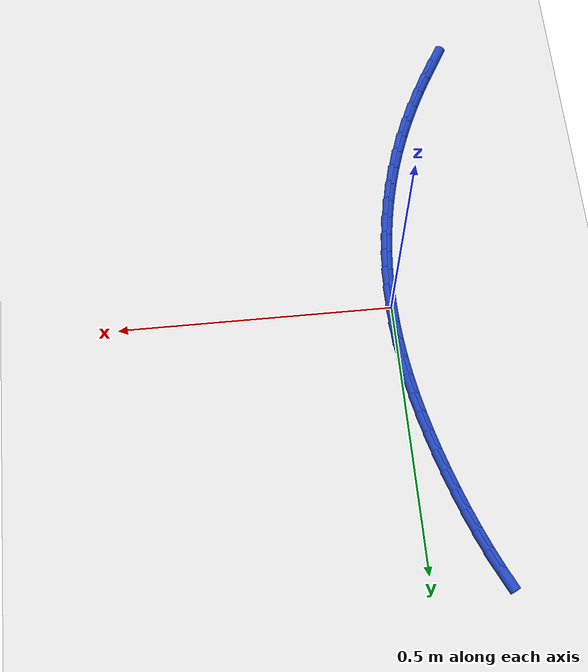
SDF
<sdf version="1.6">
 <world name="default">
  <model name="ground_plane">
   <static>1</static>
   <link name="link">
    <collision name="collision">
     <geometry><plane><normal>0 0 1</normal><size>100 100</size></plane></geometry>
     <surface><friction><ode><mu>100</mu><mu2>50</mu2></ode></friction></surface>
    </collision>
    <visual name="visual">
     <cast_shadows>0</cast_shadows>
     <geometry><plane><normal>0 0 1</normal><size>100 100</size></plane></geometry>
     <material>
      <script><uri>file://media/materials/scripts/gazebo.material</uri><name>Gazebo/WhiteGlow</name></script>
     </material>
    </visual>
   </link>
  </model>
  <model name="line">
   <link name="link_0">
    <pose>-2.0816681711721685e-17 5.551115123125783e-17 0.01 0 1.57 -1.5418644426785577</pose>
    <collision name="collision">
     <geometry><cylinder><radius>0.01</radius><length>0.08</length></cylinder></geometry>
    </collision>
    <visual name="visual">
     <material>
      <script><name>Gazebo/Blue</name><uri>file://media/materials/scripts/gazebo.material</uri></script>
     </material>
     <geometry><cylinder><radius>0.01</radius><length>0.08</length></cylinder></geometry>
    </visual>
   </link>
   <link name="link_1">
    <pose>-0.001043050151081863 0.03604186650645524 0.01 0 1.57 -1.5042972054426107</pose>
    <collision name="collision">
     <geometry><cylinder><radius>0.01</radius><length>0.08</length></cylinder></geometry>
    </collision>
    <visual name="visual">
     <material>
      <script><name>Gazebo/Blue</name><uri>file://media/materials/scripts/gazebo.material</uri></script>
     </material>
     <geometry><cylinder><radius>0.01</radius><length>0.08</length></cylinder></geometry>
    </visual>
   </link>
   <link name="link_2">
    <pose>-0.0034332655557533552 0.0719324321773923 0.01 0 1.57 -1.46811828570782</pose>
    <collision name="collision">
     <geometry><cylinder><radius>0.01</radius><length>0.08</length></cylinder></geometry>
    </collision>
    <visual name="visual">
     <material>
      <script><name>Gazebo/Blue</name><uri>file://media/materials/scripts/gazebo.material</uri></script>
     </material>
     <geometry><cylinder><radius>0.01</radius><length>0.08</length></cylinder></geometry>
    </visual>
   </link>
   <link name="link_3">
    <pose>-0.007121036012133818 0.10772198868972027 0.01 0 1.57 -1.4335593581110762</pose>
    <collision name="collision">
     <geometry><cylinder><radius>0.01</radius><length>0.08</length></cylinder></geometry>
    </collision>
    <visual name="visual">
     <material>
      <script><name>Gazebo/Blue</name><uri>file://media/materials/scripts/gazebo.material</uri></script>
     </material>
     <geometry><cylinder><radius>0.01</radius><length>0.08</length></cylinder></geometry>
    </visual>
   </link>
   <link name="link_4">
    <pose>-0.012056751318342569 0.14346082772034818 0.01 0 1.57 -1.4008151488635772</pose>
    <collision name="collision">
     <geometry><cylinder><radius>0.01</radius><length>0.08</length></cylinder></geometry>
    </collision>
    <visual name="visual">
     <material>
      <script><name>Gazebo/Blue</name><uri>file://media/materials/scripts/gazebo.material</uri></script>
     </material>
     <geometry><cylinder><radius>0.01</radius><length>0.08</length></cylinder></geometry>
    </visual>
   </link>
   <link name="link_5">
    <pose>-0.018190801272498933 0.1791992409461852 0.01 0 1.57 -1.3700414256188014</pose>
    <collision name="collision">
     <geometry><cylinder><radius>0.01</radius><length>0.08</length></cylinder></geometry>
    </collision>
    <visual name="visual">
     <material>
      <script><name>Gazebo/Blue</name><uri>file://media/materials/scripts/gazebo.material</uri></script>
     </material>
     <geometry><cylinder><radius>0.01</radius><length>0.08</length></cylinder></geometry>
    </visual>
   </link>
   <link name="link_6">
    <pose>-0.025473575672722223 0.21498752004414012 0.01 0 1.57 -1.3413551120137432</pose>
    <collision name="collision">
     <geometry><cylinder><radius>0.01</radius><length>0.08</length></cylinder></geometry>
    </collision>
    <visual name="visual">
     <material>
      <script><name>Gazebo/Blue</name><uri>file://media/materials/scripts/gazebo.material</uri></script>
     </material>
     <geometry><cylinder><radius>0.01</radius><length>0.08</length></cylinder></geometry>
    </visual>
   </link>
   <link name="link_7">
    <pose>-0.03385546431713176 0.2508759566911221 0.01 0 1.57 -1.3148361497827756</pose>
    <collision name="collision">
     <geometry><cylinder><radius>0.01</radius><length>0.08</length></cylinder></geometry>
    </collision>
    <visual name="visual">
     <material>
      <script><name>Gazebo/Blue</name><uri>file://media/materials/scripts/gazebo.material</uri></script>
     </material>
     <geometry><cylinder><radius>0.01</radius><length>0.08</length></cylinder></geometry>
    </visual>
   </link>
   <link name="link_8">
    <pose>-0.043286857003846865 0.2869148425640402 0.01 0 1.57 -1.2905306463695272</pose>
    <collision name="collision">
     <geometry><cylinder><radius>0.01</radius><length>0.08</length></cylinder></geometry>
    </collision>
    <visual name="visual">
     <material>
      <script><name>Gazebo/Blue</name><uri>file://media/materials/scripts/gazebo.material</uri></script>
     </material>
     <geometry><cylinder><radius>0.01</radius><length>0.08</length></cylinder></geometry>
    </visual>
   </link>
   <link name="link_9">
    <pose>-0.05371814353098687 0.3231544693398034 0.01 0 1.57 -1.2678592212574724</pose>
    <collision name="collision">
     <geometry><cylinder><radius>0.01</radius><length>0.08</length></cylinder></geometry>
    </collision>
    <visual name="visual">
     <material>
      <script><name>Gazebo/Blue</name><uri>file://media/materials/scripts/gazebo.material</uri></script>
     </material>
     <geometry><cylinder><radius>0.01</radius><length>0.08</length></cylinder></geometry>
    </visual>
   </link>
   <link name="link_10">
    <pose>-0.06511291075346361 0.35961103518124893 0.01 0 1.57 -1.2440398850291174</pose>
    <collision name="collision">
     <geometry><cylinder><radius>0.01</radius><length>0.08</length></cylinder></geometry>
    </collision>
    <visual name="visual">
     <material>
      <script><name>Gazebo/Blue</name><uri>file://media/materials/scripts/gazebo.material</uri></script>
     </material>
     <geometry><cylinder><radius>0.01</radius><length>0.08</length></cylinder></geometry>
    </visual>
   </link>
   <link name="link_11">
    <pose>-0.07749471821590811 0.39614580372505437 0.01 0 1.57 -1.2181016882038407</pose>
    <collision name="collision">
     <geometry><cylinder><radius>0.01</radius><length>0.08</length></cylinder></geometry>
    </collision>
    <visual name="visual">
     <material>
      <script><name>Gazebo/Blue</name><uri>file://media/materials/scripts/gazebo.material</uri></script>
     </material>
     <geometry><cylinder><radius>0.01</radius><length>0.08</length></cylinder></geometry>
    </visual>
   </link>
   <link name="link_12">
    <pose>-0.09090415266593876 0.43257605022520107 0.01 0 1.57 -1.1898022638748929</pose>
    <collision name="collision">
     <geometry><cylinder><radius>0.01</radius><length>0.08</length></cylinder></geometry>
    </collision>
    <visual name="visual">
     <material>
      <script><name>Gazebo/Blue</name><uri>file://media/materials/scripts/gazebo.material</uri></script>
     </material>
     <geometry><cylinder><radius>0.01</radius><length>0.08</length></cylinder></geometry>
    </visual>
   </link>
   <link name="link_13">
    <pose>-0.10538180200431992 0.46871904695661176 0.01 0 1.57 -1.158868181699723</pose>
    <collision name="collision">
     <geometry><cylinder><radius>0.01</radius><length>0.08</length></cylinder></geometry>
    </collision>
    <visual name="visual">
     <material>
      <script><name>Gazebo/Blue</name><uri>file://media/materials/scripts/gazebo.material</uri></script>
     </material>
     <geometry><cylinder><radius>0.01</radius><length>0.08</length></cylinder></geometry>
    </visual>
   </link>
   <link name="link_14">
    <pose>-0.12096825413181589 0.5043920661942101 0.01 0 1.57 -1.1249930020174996</pose>
    <collision name="collision">
     <geometry><cylinder><radius>0.01</radius><length>0.08</length></cylinder></geometry>
    </collision>
    <visual name="visual">
     <material>
      <script><name>Gazebo/Blue</name><uri>file://media/materials/scripts/gazebo.material</uri></script>
     </material>
     <geometry><cylinder><radius>0.01</radius><length>0.08</length></cylinder></geometry>
    </visual>
   </link>
   <link name="link_175">
    <pose>-0.14926016133297776 -0.5206137052394766 0.01 0 1.57 1.039374768066581</pose>
    <collision name="collision">
     <geometry><cylinder><radius>0.01</radius><length>0.08</length></cylinder></geometry>
    </collision>
    <visual name="visual">
     <material>
      <script><name>Gazebo/Blue</name><uri>file://media/materials/scripts/gazebo.material</uri></script>
     </material>
     <geometry><cylinder><radius>0.01</radius><length>0.08</length></cylinder></geometry>
    </visual>
   </link>
   <link name="link_176">
    <pose>-0.13074562594416606 -0.4891171967366839 0.01 0 1.57 1.068171923639652</pose>
    <collision name="collision">
     <geometry><cylinder><radius>0.01</radius><length>0.08</length></cylinder></geometry>
    </collision>
    <visual name="visual">
     <material>
      <script><name>Gazebo/Blue</name><uri>file://media/materials/scripts/gazebo.material</uri></script>
     </material>
     <geometry><cylinder><radius>0.01</radius><length>0.08</length></cylinder></geometry>
    </visual>
   </link>
   <link name="link_177">
    <pose>-0.11312213269928761 -0.45705787135283027 0.01 0 1.57 1.0994204766966869</pose>
    <collision name="collision">
     <geometry><cylinder><radius>0.01</radius><length>0.08</length></cylinder></geometry>
    </collision>
    <visual name="visual">
     <material>
      <script><name>Gazebo/Blue</name><uri>file://media/materials/scripts/gazebo.material</uri></script>
     </material>
     <geometry><cylinder><radius>0.01</radius><length>0.08</length></cylinder></geometry>
    </visual>
   </link>
   <link name="link_178">
    <pose>-0.09649568173677031 -0.4244376688251783 0.01 0 1.57 1.133184343942998</pose>
    <collision name="collision">
     <geometry><cylinder><radius>0.01</radius><length>0.08</length></cylinder></geometry>
    </collision>
    <visual name="visual">
     <material>
      <script><name>Gazebo/Blue</name><uri>file://media/materials/scripts/gazebo.material</uri></script>
     </material>
     <geometry><cylinder><radius>0.01</radius><length>0.08</length></cylinder></geometry>
    </visual>
   </link>
   <link name="link_179">
    <pose>-0.08097227319504263 -0.3912585288909925 0.01 0 1.57 1.1695156504184703</pose>
    <collision name="collision">
     <geometry><cylinder><radius>0.01</radius><length>0.08</length></cylinder></geometry>
    </collision>
    <visual name="visual">
     <material>
      <script><name>Gazebo/Blue</name><uri>file://media/materials/scripts/gazebo.material</uri></script>
     </material>
     <geometry><cylinder><radius>0.01</radius><length>0.08</length></cylinder></geometry>
    </visual>
   </link>
   <link name="link_180">
    <pose>-0.06665790721253187 -0.35752239128753444 0.01 0 1.57 1.2084479017016343</pose>
    <collision name="collision">
     <geometry><cylinder><radius>0.01</radius><length>0.08</length></cylinder></geometry>
    </collision>
    <visual name="visual">
     <material>
      <script><name>Gazebo/Blue</name><uri>file://media/materials/scripts/gazebo.material</uri></script>
     </material>
     <geometry><cylinder><radius>0.01</radius><length>0.08</length></cylinder></geometry>
    </visual>
   </link>
   <link name="link_181">
    <pose>-0.05365858254455555 -0.3232311967944228 0.01 0 1.57 1.2493282972642008</pose>
    <collision name="collision">
     <geometry><cylinder><radius>0.01</radius><length>0.08</length></cylinder></geometry>
    </collision>
    <visual name="visual">
     <material>
      <script><name>Gazebo/Blue</name><uri>file://media/materials/scripts/gazebo.material</uri></script>
     </material>
     <geometry><cylinder><radius>0.01</radius><length>0.08</length></cylinder></geometry>
    </visual>
   </link>
   <link name="link_182">
    <pose>-0.04205987511115439 -0.28840227746278824 0.01 0 1.57 1.2898757496652258</pose>
    <collision name="collision">
     <geometry><cylinder><radius>0.01</radius><length>0.08</length></cylinder></geometry>
    </collision>
    <visual name="visual">
     <material>
      <script><name>Gazebo/Blue</name><uri>file://media/materials/scripts/gazebo.material</uri></script>
     </material>
     <geometry><cylinder><radius>0.01</radius><length>0.08</length></cylinder></geometry>
    </visual>
   </link>
   <link name="link_183">
    <pose>-0.031875428151228354 -0.2531071760060478 0.01 0 1.57 1.3297013861642468</pose>
    <collision name="collision">
     <geometry><cylinder><radius>0.01</radius><length>0.08</length></cylinder></geometry>
    </collision>
    <visual name="visual">
     <material>
      <script><name>Gazebo/Blue</name><uri>file://media/materials/scripts/gazebo.material</uri></script>
     </material>
     <geometry><cylinder><radius>0.01</radius><length>0.08</length></cylinder></geometry>
    </visual>
   </link>
   <link name="link_184">
    <pose>-0.02310305603752689 -0.21742936425389334 0.01 0 1.57 1.368939518224049</pose>
    <collision name="collision">
     <geometry><cylinder><radius>0.01</radius><length>0.08</length></cylinder></geometry>
    </collision>
    <visual name="visual">
     <material>
      <script><name>Gazebo/Blue</name><uri>file://media/materials/scripts/gazebo.material</uri></script>
     </material>
     <geometry><cylinder><radius>0.01</radius><length>0.08</length></cylinder></geometry>
    </visual>
   </link>
   <link name="link_185">
    <pose>-0.01574057314279938 -0.1814523140360163 0.01 0 1.57 1.4077279544788013</pose>
    <collision name="collision">
     <geometry><cylinder><radius>0.01</radius><length>0.08</length></cylinder></geometry>
    </collision>
    <visual name="visual">
     <material>
      <script><name>Gazebo/Blue</name><uri>file://media/materials/scripts/gazebo.material</uri></script>
     </material>
     <geometry><cylinder><radius>0.01</radius><length>0.08</length></cylinder></geometry>
    </visual>
   </link>
   <link name="link_186">
    <pose>-0.009785793839795326 -0.14525949718210907 0.01 0 1.57 1.4462076239282564</pose>
    <collision name="collision">
     <geometry><cylinder><radius>0.01</radius><length>0.08</length></cylinder></geometry>
    </collision>
    <visual name="visual">
     <material>
      <script><name>Gazebo/Blue</name><uri>file://media/materials/scripts/gazebo.material</uri></script>
     </material>
     <geometry><cylinder><radius>0.01</radius><length>0.08</length></cylinder></geometry>
    </visual>
   </link>
   <link name="link_187">
    <pose>-0.005236532501263886 -0.10893438552186173 0.01 0 1.57 1.4845224628686966</pose>
    <collision name="collision">
     <geometry><cylinder><radius>0.01</radius><length>0.08</length></cylinder></geometry>
    </collision>
    <visual name="visual">
     <material>
      <script><name>Gazebo/Blue</name><uri>file://media/materials/scripts/gazebo.material</uri></script>
     </material>
     <geometry><cylinder><radius>0.01</radius><length>0.08</length></cylinder></geometry>
    </visual>
   </link>
   <link name="link_188">
    <pose>-0.00209060349995459 -0.07256045088496675 0.01 0 1.57 1.5228195064106638</pose>
    <collision name="collision">
     <geometry><cylinder><radius>0.01</radius><length>0.08</length></cylinder></geometry>
    </collision>
    <visual name="visual">
     <material>
      <script><name>Gazebo/Blue</name><uri>file://media/materials/scripts/gazebo.material</uri></script>
     </material>
     <geometry><cylinder><radius>0.01</radius><length>0.08</length></cylinder></geometry>
    </visual>
   </link>
   <link name="link_189">
    <pose>-0.00034582120861683264 -0.03622116510111558 0.01 0 1.57 1.5612491269602429</pose>
    <collision name="collision">
     <geometry><cylinder><radius>0.01</radius><length>0.08</length></cylinder></geometry>
    </collision>
    <visual name="visual">
     <material>
      <script><name>Gazebo/Blue</name><uri>file://media/materials/scripts/gazebo.material</uri></script>
     </material>
     <geometry><cylinder><radius>0.01</radius><length>0.08</length></cylinder></geometry>
    </visual>
   </link>
   <link name="link_190">
    <pose>-1.8214596497756474e-17 -6.938893903907228e-18 0.01 0 1.57 -1.5416272919509686</pose>
    <collision name="collision">
     <geometry><cylinder><radius>0.01</radius><length>0.08</length></cylinder></geometry>
    </collision>
    <visual name="visual">
     <material>
      <script><name>Gazebo/Blue</name><uri>file://media/materials/scripts/gazebo.material</uri></script>
     </material>
     <geometry><cylinder><radius>0.01</radius><length>0.08</length></cylinder></geometry>
    </visual>
   </link>
   <link name="link_191">
    <pose>-0.0010509542468535426 0.03601957258868848 0.01 0 1.57 -1.5416272919509686</pose>
    <collision name="collision">
     <geometry><cylinder><radius>0.01</radius><length>0.08</length></cylinder></geometry>
    </collision>
    <visual name="visual">
     <material>
      <script><name>Gazebo/Blue</name><uri>file://media/materials/scripts/gazebo.material</uri></script>
     </material>
     <geometry><cylinder><radius>0.01</radius><length>0.08</length></cylinder></geometry>
    </visual>
   </link>
  </model>
 </world>
</sdf>
